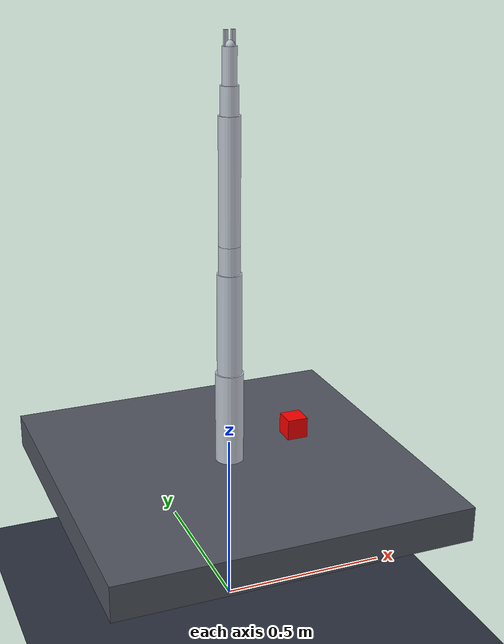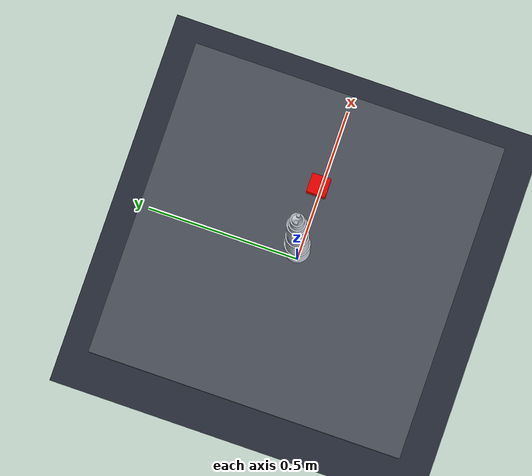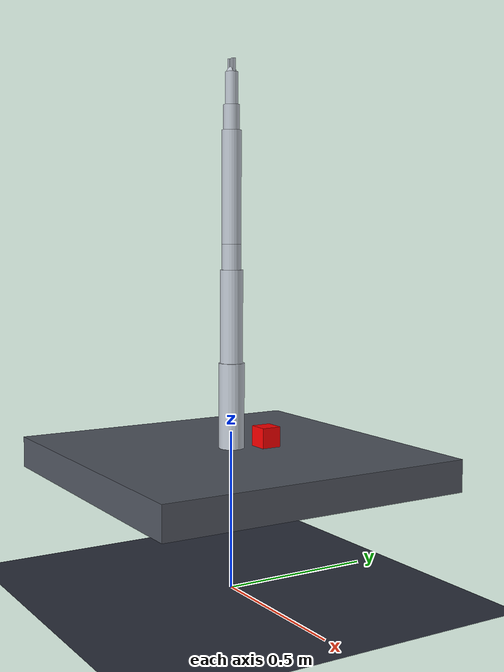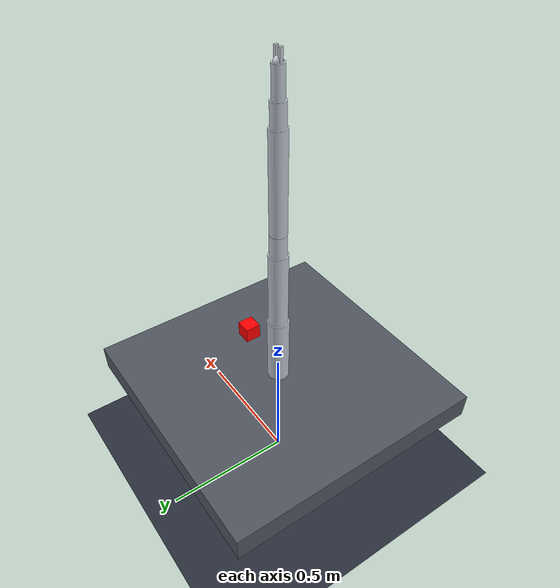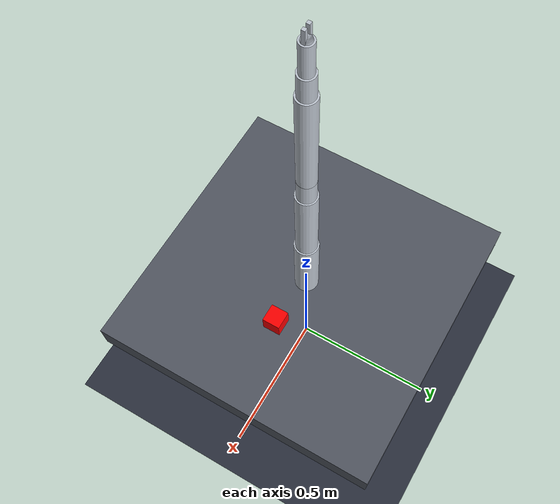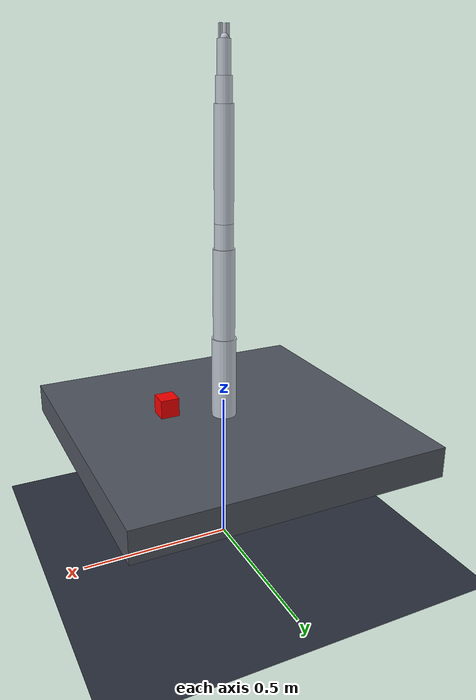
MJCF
<?xml version="1.0" ?>
<mujoco model="xarm_6dof">
  <compiler angle="radian" inertiafromgeom="true" />
  <option timestep="0.002" gravity="0 0 -9.81" />

  <default>
    <geom rgba="0.75 0.78 0.82 1" />
    <default class="xarm">
      <geom contype="1" conaffinity="1" type="cylinder" />
      <joint type="hinge" damping="0.5" frictionloss="0.1" />
    </default>
  </default>

  <worldbody>
    <light name="key" pos="1.5 -1.2 2.2" dir="-0.6 0.4 -1" diffuse="1 1 1" specular="0.35 0.35 0.35"/>
    <light name="fill" pos="-1.2 1.0 1.6" dir="0.5 -0.3 -1" diffuse="0.6 0.6 0.7" specular="0.15 0.15 0.15"/>
    <geom name="floor" type="plane" pos="0 0 0" size="2 2 0.1" rgba="0.17 0.19 0.24 1"/>
    <camera name="cam_front" pos="1.75 -2.0 1.55" xyaxes="0.74 0.67 0  -0.34 0.38 0.86"/>
    <camera name="cam_side" pos="-2.2 -0.25 1.5" xyaxes="0.08 0.997 0  -0.57 0.05 0.82"/>
    <camera name="cam_far" pos="2.6 -2.8 2.0" xyaxes="0.73 0.68 0  -0.39 0.42 0.82"/>
    <camera name="cam_top" pos="0.0 -0.25 2.65" xyaxes="1 0 0  0 1 0"/>

    <!-- Table -->
    <body name="table" pos="0 0 0.4">
      <geom type="box" size="0.5 0.5 0.05" mass="10" rgba="0.32 0.34 0.38 1"/>
    </body>

    <!-- Red block on table -->
    <body name="red_block" pos="0.2 0.0 0.52">
      <geom type="box" size="0.03 0.03 0.03" mass="0.5" rgba="1 0 0 1" />
      <joint name="block_free" type="free" />
    </body>

    <!-- xArm base  -->
    <body name="xarm_base" pos="0 0 0.4">
      <geom type="sphere" size="0.05" mass="0.1" />

      <!-- Joint 1 (base yaw) -->
      <body name="link1" pos="0 0 0.05">
        <geom type="cylinder" size="0.04 0.1335" pos="0 0 0.1335" mass="1.2" />
        <joint name="joint1" type="hinge" axis="0 0 1" range="-6.283 6.283" damping="0.5" />

        <!-- Joint 2 (shoulder pitch) -->
        <body name="link2" pos="0 0 0.267">
          <geom type="cylinder" size="0.035 0.1445" pos="0 0 0.1445" mass="0.8" />
          <joint name="joint2" type="hinge" axis="0 1 0" range="-3.665 3.665" damping="0.4" />

          <!-- Joint 3 (shoulder roll) -->
          <body name="link3" pos="0 0 0.289">
            <geom type="cylinder" size="0.03 0.039" pos="0 0 0.039" mass="0.6" />
            <joint name="joint3" type="hinge" axis="1 0 0" range="-6.109 6.109" damping="0.4" />

            <!-- Joint 4 (elbow pitch) -->
            <body name="link4" pos="0 0 0.078">
              <geom type="cylinder" size="0.03 0.173" pos="0 0 0.173" mass="0.5" />
              <joint name="joint4" type="hinge" axis="0 1 0" range="-4.555 4.555" damping="0.3" />

              <!-- Joint 5 (wrist pitch) -->
              <body name="link5" pos="0 0 0.346">
                <geom type="cylinder" size="0.025 0.038" pos="0 0 0.038" mass="0.4" />
                <joint name="joint5" type="hinge" axis="0 1 0" range="-6.109 6.109" damping="0.2" />

                <!-- Joint 6 (wrist roll) -->
                <body name="link6" pos="0 0 0.076">
                  <geom type="cylinder" size="0.02 0.0485" pos="0 0 0.0485" mass="0.3" />
                  <joint name="joint6" type="hinge" axis="1 0 0" range="-6.283 6.283" damping="0.2" />

                  <!-- End-effector frame -->
                  <body name="gripper_base" pos="0 0 0.097">
                    <geom type="sphere" size="0.015" mass="0.1" />

                    <!-- Gripper left finger -->
                    <body name="gripper_left" pos="-0.01 0 0">
                      <geom type="box" size="0.005 0.005 0.02" pos="0 0 0.02" mass="0.05" />
                      <joint name="gripper_left" type="slide" axis="1 0 0" range="0 0.05" damping="0.1" />
                    </body>

                    <!-- Gripper right finger -->
                    <body name="gripper_right" pos="0.01 0 0">
                      <geom type="box" size="0.005 0.005 0.02" pos="0 0 0.02" mass="0.05" />
                      <joint name="gripper_right" type="slide" axis="-1 0 0" range="0 0.05" damping="0.1" />
                    </body>
                  </body>
                </body>
              </body>
            </body>
          </body>
        </body>
      </body>
    </body>
  </worldbody>

  <actuator>
    <motor name="joint1_motor" joint="joint1" gear="1" ctrlrange="-20 20" />
    <motor name="joint2_motor" joint="joint2" gear="1" ctrlrange="-15 15" />
    <motor name="joint3_motor" joint="joint3" gear="1" ctrlrange="-15 15" />
    <motor name="joint4_motor" joint="joint4" gear="1" ctrlrange="-10 10" />
    <motor name="joint5_motor" joint="joint5" gear="1" ctrlrange="-8 8" />
    <motor name="joint6_motor" joint="joint6" gear="1" ctrlrange="-6 6" />
    <motor name="gripper_left_motor" joint="gripper_left" gear="1" ctrlrange="-5 5" />
    <motor name="gripper_right_motor" joint="gripper_right" gear="1" ctrlrange="-5 5" />
  </actuator>

  <sensor>
    <!-- Joint position sensors -->
    <jointpos name="J1" joint="joint1" />
    <jointpos name="J2" joint="joint2" />
    <jointpos name="J3" joint="joint3" />
    <jointpos name="J4" joint="joint4" />
    <jointpos name="J5" joint="joint5" />
    <jointpos name="J6" joint="joint6" />
    <!-- Joint velocity sensors -->
    <jointvel name="V1" joint="joint1" />
    <jointvel name="V2" joint="joint2" />
    <jointvel name="V3" joint="joint3" />
    <jointvel name="V4" joint="joint4" />
    <jointvel name="V5" joint="joint5" />
    <jointvel name="V6" joint="joint6" />
  </sensor>
</mujoco>
